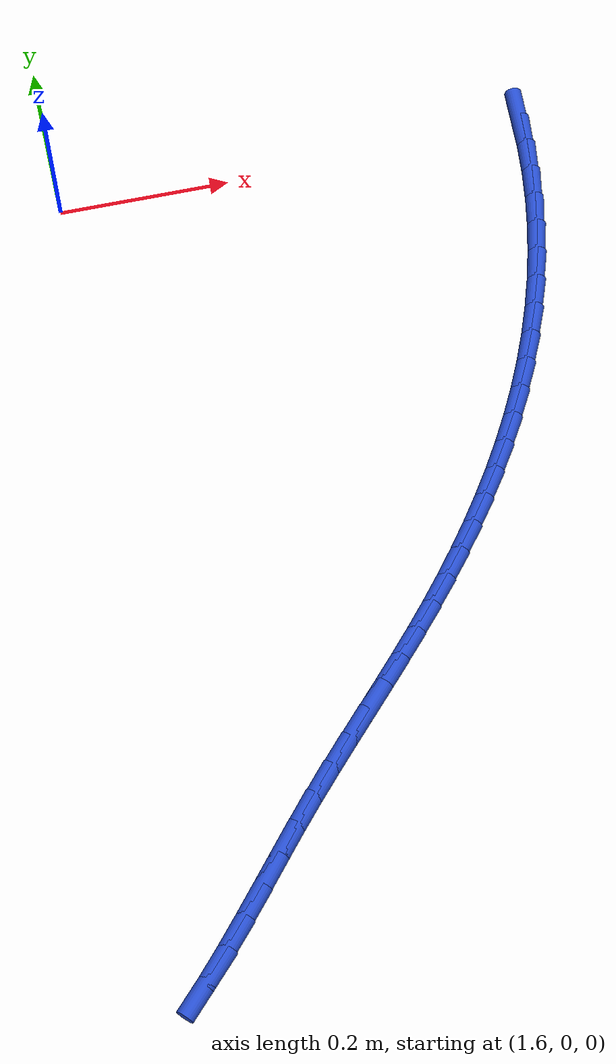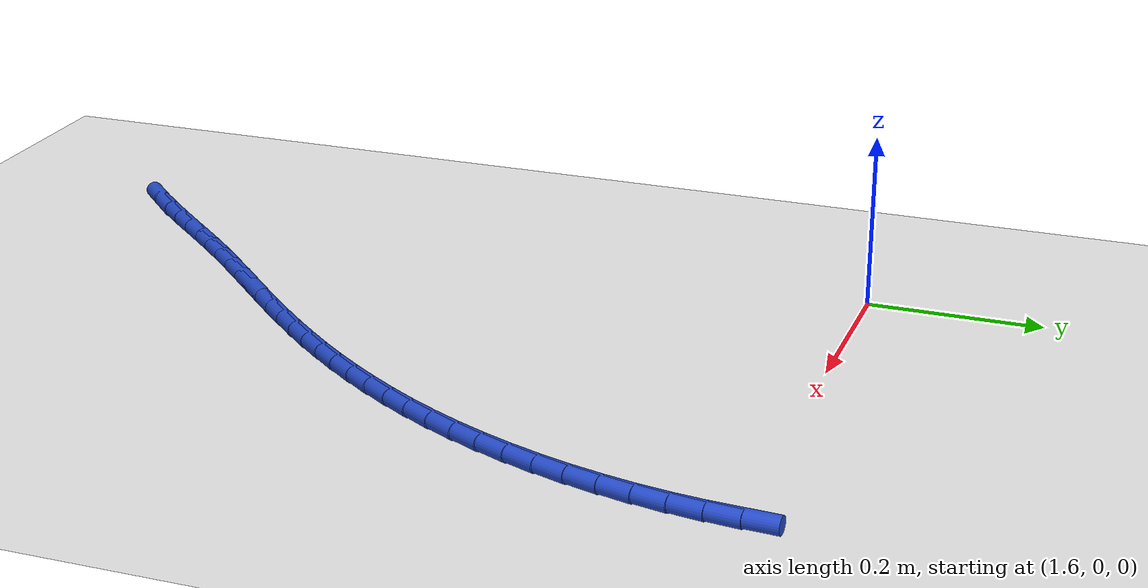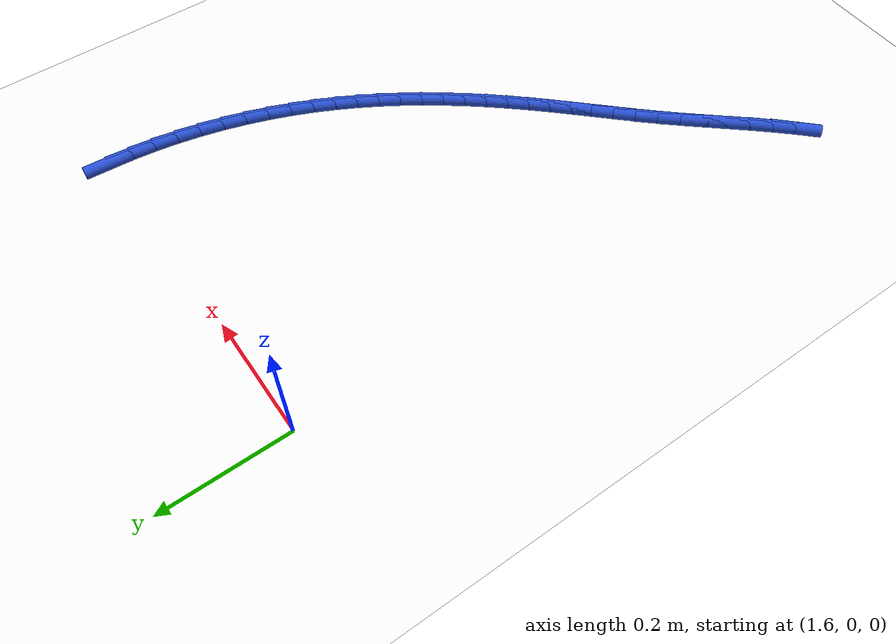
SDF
<sdf version="1.6">
 <world name="default">
  <model name="ground_plane">
   <static>1</static>
   <link name="link">
    <collision name="collision">
     <geometry><plane><normal>0 0 1</normal><size>100 100</size></plane></geometry>
     <surface><friction><ode><mu>100</mu><mu2>50</mu2></ode></friction></surface>
    </collision>
    <visual name="visual">
     <cast_shadows>0</cast_shadows>
     <geometry><plane><normal>0 0 1</normal><size>100 100</size></plane></geometry>
     <material>
      <script><uri>file://media/materials/scripts/gazebo.material</uri><name>Gazebo/WhiteGlow</name></script>
     </material>
    </visual>
   </link>
  </model>
  <model name="line">
   <link name="link_95">
    <pose>2.1558756807690145 0.006192256056532876 0.01 0 1.57 1.5112071057566103</pose>
    <collision name="collision">
     <geometry><cylinder><radius>0.01</radius><length>0.08</length></cylinder></geometry>
    </collision>
    <visual name="visual">
     <material>
      <script><name>Gazebo/Blue</name><uri>file://media/materials/scripts/gazebo.material</uri></script>
     </material>
     <geometry><cylinder><radius>0.01</radius><length>0.08</length></cylinder></geometry>
    </visual>
   </link>
   <link name="link_96">
    <pose>2.153691262622911 -0.030422285360510625 0.01 0 1.57 1.4612877729254066</pose>
    <collision name="collision">
     <geometry><cylinder><radius>0.01</radius><length>0.08</length></cylinder></geometry>
    </collision>
    <visual name="visual">
     <material>
      <script><name>Gazebo/Blue</name><uri>file://media/materials/scripts/gazebo.material</uri></script>
     </material>
     <geometry><cylinder><radius>0.01</radius><length>0.08</length></cylinder></geometry>
    </visual>
   </link>
   <link name="link_97">
    <pose>2.1496561307295585 -0.0671225147760102 0.01 0 1.57 1.4138536372657653</pose>
    <collision name="collision">
     <geometry><cylinder><radius>0.01</radius><length>0.08</length></cylinder></geometry>
    </collision>
    <visual name="visual">
     <material>
      <script><name>Gazebo/Blue</name><uri>file://media/materials/scripts/gazebo.material</uri></script>
     </material>
     <geometry><cylinder><radius>0.01</radius><length>0.08</length></cylinder></geometry>
    </visual>
   </link>
   <link name="link_98">
    <pose>2.1438588429100567 -0.10375761905433684 0.01 0 1.57 1.368467115886415</pose>
    <collision name="collision">
     <geometry><cylinder><radius>0.01</radius><length>0.08</length></cylinder></geometry>
    </collision>
    <visual name="visual">
     <material>
      <script><name>Gazebo/Blue</name><uri>file://media/materials/scripts/gazebo.material</uri></script>
     </material>
     <geometry><cylinder><radius>0.01</radius><length>0.08</length></cylinder></geometry>
    </visual>
   </link>
   <link name="link_99">
    <pose>2.136387956985504 -0.14017678505986386 0.01 0 1.57 1.3247000600908643</pose>
    <collision name="collision">
     <geometry><cylinder><radius>0.01</radius><length>0.08</length></cylinder></geometry>
    </collision>
    <visual name="visual">
     <material>
      <script><name>Gazebo/Blue</name><uri>file://media/materials/scripts/gazebo.material</uri></script>
     </material>
     <geometry><cylinder><radius>0.01</radius><length>0.08</length></cylinder></geometry>
    </visual>
   </link>
   <link name="link_100">
    <pose>2.127332030777 -0.1762291996569622 0.01 0 1.57 1.2821313789597415</pose>
    <collision name="collision">
     <geometry><cylinder><radius>0.01</radius><length>0.08</length></cylinder></geometry>
    </collision>
    <visual name="visual">
     <material>
      <script><name>Gazebo/Blue</name><uri>file://media/materials/scripts/gazebo.material</uri></script>
     </material>
     <geometry><cylinder><radius>0.01</radius><length>0.08</length></cylinder></geometry>
    </visual>
   </link>
   <link name="link_101">
    <pose>2.116779622105643 -0.21176404971000373 0.01 0 1.57 1.2403420651259962</pose>
    <collision name="collision">
     <geometry><cylinder><radius>0.01</radius><length>0.08</length></cylinder></geometry>
    </collision>
    <visual name="visual">
     <material>
      <script><name>Gazebo/Blue</name><uri>file://media/materials/scripts/gazebo.material</uri></script>
     </material>
     <geometry><cylinder><radius>0.01</radius><length>0.08</length></cylinder></geometry>
    </visual>
   </link>
   <link name="link_102">
    <pose>2.104819288792532 -0.24663052208336003 0.01 0 1.57 1.1989081778190953</pose>
    <collision name="collision">
     <geometry><cylinder><radius>0.01</radius><length>0.08</length></cylinder></geometry>
    </collision>
    <visual name="visual">
     <material>
      <script><name>Gazebo/Blue</name><uri>file://media/materials/scripts/gazebo.material</uri></script>
     </material>
     <geometry><cylinder><radius>0.01</radius><length>0.08</length></cylinder></geometry>
    </visual>
   </link>
   <link name="link_103">
    <pose>2.091539587811616 -0.2806778112885515 0.01 0 1.57 1.1577152482292534</pose>
    <collision name="collision">
     <geometry><cylinder><radius>0.01</radius><length>0.08</length></cylinder></geometry>
    </collision>
    <visual name="visual">
     <material>
      <script><name>Gazebo/Blue</name><uri>file://media/materials/scripts/gazebo.material</uri></script>
     </material>
     <geometry><cylinder><radius>0.01</radius><length>0.08</length></cylinder></geometry>
    </visual>
   </link>
   <link name="link_104">
    <pose>2.0770247615220128 -0.3137940595216141 0.01 0 1.57 1.1176718747264212</pose>
    <collision name="collision">
     <geometry><cylinder><radius>0.01</radius><length>0.08</length></cylinder></geometry>
    </collision>
    <visual name="visual">
     <material>
      <script><name>Gazebo/Blue</name><uri>file://media/materials/scripts/gazebo.material</uri></script>
     </material>
     <geometry><cylinder><radius>0.01</radius><length>0.08</length></cylinder></geometry>
    </visual>
   </link>
   <link name="link_105">
    <pose>2.061344699413291 -0.34599697118907974 0.01 0 1.57 1.079180147958098</pose>
    <collision name="collision">
     <geometry><cylinder><radius>0.01</radius><length>0.08</length></cylinder></geometry>
    </collision>
    <visual name="visual">
     <material>
      <script><name>Gazebo/Blue</name><uri>file://media/materials/scripts/gazebo.material</uri></script>
     </material>
     <geometry><cylinder><radius>0.01</radius><length>0.08</length></cylinder></geometry>
    </visual>
   </link>
   <link name="link_106">
    <pose>2.044566310225764 -0.3773311576836383 0.01 0 1.57 1.0424219915538442</pose>
    <collision name="collision">
     <geometry><cylinder><radius>0.01</radius><length>0.08</length></cylinder></geometry>
    </collision>
    <visual name="visual">
     <material>
      <script><name>Gazebo/Blue</name><uri>file://media/materials/scripts/gazebo.material</uri></script>
     </material>
     <geometry><cylinder><radius>0.01</radius><length>0.08</length></cylinder></geometry>
    </visual>
   </link>
   <link name="link_107">
    <pose>2.0267565026997474 -0.4078412303979772 0.01 0 1.57 1.0075494407267798</pose>
    <collision name="collision">
     <geometry><cylinder><radius>0.01</radius><length>0.08</length></cylinder></geometry>
    </collision>
    <visual name="visual">
     <material>
      <script><name>Gazebo/Blue</name><uri>file://media/materials/scripts/gazebo.material</uri></script>
     </material>
     <geometry><cylinder><radius>0.01</radius><length>0.08</length></cylinder></geometry>
    </visual>
   </link>
   <link name="link_108">
    <pose>2.0079821855755546 -0.4375718007247842 0.01 0 1.57 0.974685073329659</pose>
    <collision name="collision">
     <geometry><cylinder><radius>0.01</radius><length>0.08</length></cylinder></geometry>
    </collision>
    <visual name="visual">
     <material>
      <script><name>Gazebo/Blue</name><uri>file://media/materials/scripts/gazebo.material</uri></script>
     </material>
     <geometry><cylinder><radius>0.01</radius><length>0.08</length></cylinder></geometry>
    </visual>
   </link>
   <link name="link_109">
    <pose>1.9883102675935014 -0.4665674800567477 0.01 0 1.57 0.9439237331733741</pose>
    <collision name="collision">
     <geometry><cylinder><radius>0.01</radius><length>0.08</length></cylinder></geometry>
    </collision>
    <visual name="visual">
     <material>
      <script><name>Gazebo/Blue</name><uri>file://media/materials/scripts/gazebo.material</uri></script>
     </material>
     <geometry><cylinder><radius>0.01</radius><length>0.08</length></cylinder></geometry>
    </visual>
   </link>
   <link name="link_110">
    <pose>1.9678076574939016 -0.4948728797865557 0.01 0 1.57 0.9153352173607999</pose>
    <collision name="collision">
     <geometry><cylinder><radius>0.01</radius><length>0.08</length></cylinder></geometry>
    </collision>
    <visual name="visual">
     <material>
      <script><name>Gazebo/Blue</name><uri>file://media/materials/scripts/gazebo.material</uri></script>
     </material>
     <geometry><cylinder><radius>0.01</radius><length>0.08</length></cylinder></geometry>
    </visual>
   </link>
   <link name="link_111">
    <pose>1.9465412640170703 -0.5225326113068964 0.01 0 1.57 0.8889675940309711</pose>
    <collision name="collision">
     <geometry><cylinder><radius>0.01</radius><length>0.08</length></cylinder></geometry>
    </collision>
    <visual name="visual">
     <material>
      <script><name>Gazebo/Blue</name><uri>file://media/materials/scripts/gazebo.material</uri></script>
     </material>
     <geometry><cylinder><radius>0.01</radius><length>0.08</length></cylinder></geometry>
    </visual>
   </link>
   <link name="link_112">
    <pose>1.9245779959033216 -0.5495912860104575 0.01 0 1.57 0.8648508473737215</pose>
    <collision name="collision">
     <geometry><cylinder><radius>0.01</radius><length>0.08</length></cylinder></geometry>
    </collision>
    <visual name="visual">
     <material>
      <script><name>Gazebo/Blue</name><uri>file://media/materials/scripts/gazebo.material</uri></script>
     </material>
     <geometry><cylinder><radius>0.01</radius><length>0.08</length></cylinder></geometry>
    </visual>
   </link>
   <link name="link_113">
    <pose>1.9019847618929693 -0.5760935152899277 0.01 0 1.57 0.8430006177371051</pose>
    <collision name="collision">
     <geometry><cylinder><radius>0.01</radius><length>0.08</length></cylinder></geometry>
    </collision>
    <visual name="visual">
     <material>
      <script><name>Gazebo/Blue</name><uri>file://media/materials/scripts/gazebo.material</uri></script>
     </material>
     <geometry><cylinder><radius>0.01</radius><length>0.08</length></cylinder></geometry>
    </visual>
   </link>
   <link name="link_114">
    <pose>1.8788284710532472 -0.602083911160993 0.01 0 1.57 0.8241382595641139</pose>
    <collision name="collision">
     <geometry><cylinder><radius>0.01</radius><length>0.08</length></cylinder></geometry>
    </collision>
    <visual name="visual">
     <material>
      <script><name>Gazebo/Blue</name><uri>file://media/materials/scripts/gazebo.material</uri></script>
     </material>
     <geometry><cylinder><radius>0.01</radius><length>0.08</length></cylinder></geometry>
    </visual>
   </link>
   <link name="link_115">
    <pose>1.855188324713267 -0.6276305105893896 0.01 0 1.57 0.8108985276287527</pose>
    <collision name="collision">
     <geometry><cylinder><radius>0.01</radius><length>0.08</length></cylinder></geometry>
    </collision>
    <visual name="visual">
     <material>
      <script><name>Gazebo/Blue</name><uri>file://media/materials/scripts/gazebo.material</uri></script>
     </material>
     <geometry><cylinder><radius>0.01</radius><length>0.08</length></cylinder></geometry>
    </visual>
   </link>
   <link name="link_116">
    <pose>1.8311883625151624 -0.652886797405983 0.01 0 1.57 0.8038996025386035</pose>
    <collision name="collision">
     <geometry><cylinder><radius>0.01</radius><length>0.08</length></cylinder></geometry>
    </collision>
    <visual name="visual">
     <material>
      <script><name>Gazebo/Blue</name><uri>file://media/materials/scripts/gazebo.material</uri></script>
     </material>
     <geometry><cylinder><radius>0.01</radius><length>0.08</length></cylinder></geometry>
    </visual>
   </link>
   <link name="link_117">
    <pose>1.806962844829215 -0.6780257327395286 0.01 0 1.57 0.8031242020613373</pose>
    <collision name="collision">
     <geometry><cylinder><radius>0.01</radius><length>0.08</length></cylinder></geometry>
    </collision>
    <visual name="visual">
     <material>
      <script><name>Gazebo/Blue</name><uri>file://media/materials/scripts/gazebo.material</uri></script>
     </material>
     <geometry><cylinder><radius>0.01</radius><length>0.08</length></cylinder></geometry>
    </visual>
   </link>
   <link name="link_118">
    <pose>1.7826460320257056 -0.7032202777187808 0.01 0 1.57 0.8085195639810232</pose>
    <collision name="collision">
     <geometry><cylinder><radius>0.01</radius><length>0.08</length></cylinder></geometry>
    </collision>
    <visual name="visual">
     <material>
      <script><name>Gazebo/Blue</name><uri>file://media/materials/scripts/gazebo.material</uri></script>
     </material>
     <geometry><cylinder><radius>0.01</radius><length>0.08</length></cylinder></geometry>
    </visual>
   </link>
   <link name="link_119">
    <pose>1.7583721844749154 -0.728643393472495 0.01 0 1.57 0.8199993677744053</pose>
    <collision name="collision">
     <geometry><cylinder><radius>0.01</radius><length>0.08</length></cylinder></geometry>
    </collision>
    <visual name="visual">
     <material>
      <script><name>Gazebo/Blue</name><uri>file://media/materials/scripts/gazebo.material</uri></script>
     </material>
     <geometry><cylinder><radius>0.01</radius><length>0.08</length></cylinder></geometry>
    </visual>
   </link>
   <link name="link_120">
    <pose>1.734275562547126 -0.7544680411294261 0.01 0 1.57 0.8371817689279012</pose>
    <collision name="collision">
     <geometry><cylinder><radius>0.01</radius><length>0.08</length></cylinder></geometry>
    </collision>
    <visual name="visual">
     <material>
      <script><name>Gazebo/Blue</name><uri>file://media/materials/scripts/gazebo.material</uri></script>
     </material>
     <geometry><cylinder><radius>0.01</radius><length>0.08</length></cylinder></geometry>
    </visual>
   </link>
   <link name="link_121">
    <pose>1.7104851611504368 -0.7808593580703134 0.01 0 1.57 0.8529048950103981</pose>
    <collision name="collision">
     <geometry><cylinder><radius>0.01</radius><length>0.08</length></cylinder></geometry>
    </collision>
    <visual name="visual">
     <material>
      <script><name>Gazebo/Blue</name><uri>file://media/materials/scripts/gazebo.material</uri></script>
     </material>
     <geometry><cylinder><radius>0.01</radius><length>0.08</length></cylinder></geometry>
    </visual>
   </link>
   <link name="link_122">
    <pose>1.6869852037745294 -0.8077673713857362 0.01 0 1.57 0.8595551264887366</pose>
    <collision name="collision">
     <geometry><cylinder><radius>0.01</radius><length>0.08</length></cylinder></geometry>
    </collision>
    <visual name="visual">
     <material>
      <script><name>Gazebo/Blue</name><uri>file://media/materials/scripts/gazebo.material</uri></script>
     </material>
     <geometry><cylinder><radius>0.01</radius><length>0.08</length></cylinder></geometry>
    </visual>
   </link>
   <link name="link_123">
    <pose>1.6636006296447423 -0.8349054337957821 0.01 0 1.57 0.8568669388359544</pose>
    <collision name="collision">
     <geometry><cylinder><radius>0.01</radius><length>0.08</length></cylinder></geometry>
    </collision>
    <visual name="visual">
     <material>
      <script><name>Gazebo/Blue</name><uri>file://media/materials/scripts/gazebo.material</uri></script>
     </material>
     <geometry><cylinder><radius>0.01</radius><length>0.08</length></cylinder></geometry>
    </visual>
   </link>
   <link name="link_124">
    <pose>1.6401482016480673 -0.8619747491134279 0.01 0 1.57 0.8448110610116865</pose>
    <collision name="collision">
     <geometry><cylinder><radius>0.01</radius><length>0.08</length></cylinder></geometry>
    </collision>
    <visual name="visual">
     <material>
      <script><name>Gazebo/Blue</name><uri>file://media/materials/scripts/gazebo.material</uri></script>
     </material>
     <geometry><cylinder><radius>0.01</radius><length>0.08</length></cylinder></geometry>
    </visual>
   </link>
   <link name="link_125">
    <pose>1.6164446826714964 -0.8886765211516494 0.01 0 1.57 0.8232007850785875</pose>
    <collision name="collision">
     <geometry><cylinder><radius>0.01</radius><length>0.08</length></cylinder></geometry>
    </collision>
    <visual name="visual">
     <material>
      <script><name>Gazebo/Blue</name><uri>file://media/materials/scripts/gazebo.material</uri></script>
     </material>
     <geometry><cylinder><radius>0.01</radius><length>0.08</length></cylinder></geometry>
    </visual>
   </link>
   <link name="link_126">
    <pose>1.592306835602021 -0.9147119537234254 0.01 0 1.57 0.7917178015132769</pose>
    <collision name="collision">
     <geometry><cylinder><radius>0.01</radius><length>0.08</length></cylinder></geometry>
    </collision>
    <visual name="visual">
     <material>
      <script><name>Gazebo/Blue</name><uri>file://media/materials/scripts/gazebo.material</uri></script>
     </material>
     <geometry><cylinder><radius>0.01</radius><length>0.08</length></cylinder></geometry>
    </visual>
   </link>
  </model>
 </world>
</sdf>
